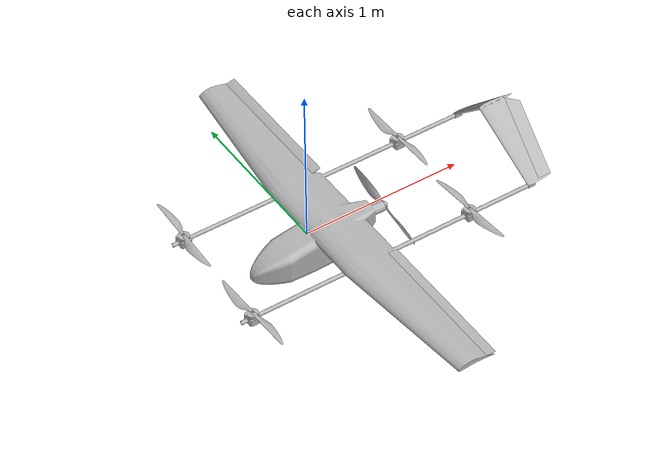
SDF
<sdf version='1.6'>
  <model name='gauthali_vtol_6'>
    <link name='body'>
      <pose frame=''>0 0 0 0 -0 0</pose>
      <inertial>
        <pose frame=''>0.118555 -8e-06 -0.056793 0 -0 0</pose>
        <mass>9.29767</mass>
        <inertia>
          <ixx>0.343777</ixx>
          <ixy>5.07423e-06</ixy>
          <ixz>-0.0937618</ixz>
          <iyy>0.630894</iyy>
          <iyz>8.98863e-07</iyz>
          <izz>0.888298</izz>
        </inertia>
      </inertial>
      <collision name='body_collision'>
        <pose frame=''>0 0 0 0 -0 0</pose>
        <geometry>
          <mesh>
            <scale>1 1 1</scale>
            <uri>model://gauthali_vtol_6/meshes/body.STL</uri>
          </mesh>
        </geometry>
      </collision>
      <collision name='body_fixed_joint_lump__tail_collision_1'>
        <pose frame=''>1.16 0 0.34355 2.3562 -0 0</pose>
        <geometry>
          <mesh>
            <scale>1 1 1</scale>
            <uri>model://gauthali_vtol_6/meshes/tail.STL</uri>
          </mesh>
        </geometry>
      </collision>
      <visual name='body_visual'>
        <pose frame=''>0 0 0 0 -0 0</pose>
        <geometry>
          <mesh>
            <scale>1 1 1</scale>
            <uri>model://gauthali_vtol_6/meshes/body.STL</uri>
          </mesh>
        </geometry>
      </visual>
      <visual name='body_fixed_joint_lump__tail_visual_1'>
        <pose frame=''>1.16 0 0.34355 2.3562 -0 0</pose>
        <geometry>
          <mesh>
            <scale>1 1 1</scale>
            <uri>model://gauthali_vtol_6/meshes/tail.STL</uri>
          </mesh>
        </geometry>
      </visual>
    </link>
    <link name='left_aileron'>
      <pose frame=''>0.28599 -0.38 0.006356 1.5708 -0.29369 0</pose>
      <inertial>
        <pose frame=''>0.017378 -0.008312 0.45424 0 -0 0</pose>
        <mass>0.0090385</mass>
        <inertia>
          <ixx>0.00063296</ixx>
          <ixy>3.822e-07</ixy>
          <ixz>-1.7169e-07</ixz>
          <iyy>0.00063438</iyy>
          <iyz>4.2676e-07</iyz>
          <izz>1.7477e-06</izz>
        </inertia>
      </inertial>
      <collision name='left_aileron_collision'>
        <pose frame=''>0 0 0 0 -0 0</pose>
        <geometry>
          <mesh>
            <scale>1 1 1</scale>
            <uri>model://gauthali_vtol_6/meshes/left_aileron.STL</uri>
          </mesh>
        </geometry>
      </collision>
      <visual name='left_aileron_visual'>
        <pose frame=''>0 0 0 0 -0 0</pose>
        <geometry>
          <mesh>
            <scale>1 1 1</scale>
            <uri>model://gauthali_vtol_6/meshes/left_aileron.STL</uri>
          </mesh>
        </geometry>
      </visual>
    </link>
    <joint name='left_aileron_joint' type='revolute'>
      <child>left_aileron</child>
      <parent>body</parent>
      <axis>
        <xyz>1e-06 -1 -4e-06</xyz>
        <limit>
          <lower>-0.53</lower>
          <upper>0.53</upper>
          <effort>-1</effort>
          <velocity>-1</velocity>
        </limit>
        <dynamics>
          <spring_reference>0</spring_reference>
          <spring_stiffness>0</spring_stiffness>
        </dynamics>
        <use_parent_model_frame>1</use_parent_model_frame>
      </axis>
    </joint>
    <link name='right_aileron'>
      <pose frame=''>0.28599 0.38 0.006356 1.5708 -0.59602 0</pose>
      <inertial>
        <pose frame=''>0.017379 -0.008312 -0.454239 0 -0 0</pose>
        <mass>0.00903851</mass>
        <inertia>
          <ixx>0.000632961</ixx>
          <ixy>3.82202e-07</ixy>
          <ixz>1.71598e-07</ixz>
          <iyy>0.000634387</iyy>
          <iyz>-4.26746e-07</iyz>
          <izz>1.74769e-06</izz>
        </inertia>
      </inertial>
      <collision name='right_aileron_collision'>
        <pose frame=''>0 0 0 0 -0 0</pose>
        <geometry>
          <mesh>
            <scale>1 1 1</scale>
            <uri>model://gauthali_vtol_6/meshes/right_aileron.STL</uri>
          </mesh>
        </geometry>
      </collision>
      <visual name='right_aileron_visual'>
        <pose frame=''>0 0 0 0 -0 0</pose>
        <geometry>
          <mesh>
            <scale>1 1 1</scale>
            <uri>model://gauthali_vtol_6/meshes/right_aileron.STL</uri>
          </mesh>
        </geometry>
      </visual>
    </link>
    <joint name='right_aileron_joint' type='revolute'>
      <child>right_aileron</child>
      <parent>body</parent>
      <axis>
        <xyz>2e-06 -1 -3e-06</xyz>
        <limit>
          <lower>-0.53</lower>
          <upper>0.53</upper>
          <effort>1</effort>
          <velocity>1</velocity>
        </limit>
        <dynamics>
          <spring_reference>0</spring_reference>
          <spring_stiffness>0</spring_stiffness>
        </dynamics>
        <use_parent_model_frame>1</use_parent_model_frame>
      </axis>
    </joint>
    <link name='rotor_0'>
      <pose frame=''>0.851 -0.35355 0.004413 1.5708 0 0.070839</pose>
      <inertial>
        <pose frame=''>0 0.015147 -0 0 -0 0</pose>
        <mass>0.067297</mass>
        <inertia>
          <ixx>0.0014426</ixx>
          <ixy>-5.9425e-13</ixy>
          <ixz>6.2333e-05</ixz>
          <iyy>0.0014525</iyy>
          <iyz>5.3654e-13</iyz>
          <izz>1.1315e-05</izz>
        </inertia>
      </inertial>
      <collision name='rotor_0_collision'>
        <pose frame=''>0 0 0 0 -0 0</pose>
        <geometry>
          <mesh>
            <scale>1 1 1</scale>
            <uri>model://gauthali_vtol_6/meshes/rotor_0.STL</uri>
          </mesh>
        </geometry>
      </collision>
      <visual name='rotor_0_visual'>
        <pose frame=''>0 0 0 0 -0 0</pose>
        <geometry>
          <mesh>
            <scale>1 1 1</scale>
            <uri>model://gauthali_vtol_6/meshes/rotor_0.STL</uri>
          </mesh>
        </geometry>
      </visual>
    </link>
    <joint name='rotor_0_joint' type='revolute'>
      <child>rotor_0</child>
      <parent>body</parent>
      <axis>
        <xyz>0 -4e-06 1</xyz>
        <limit>
          <lower>-1e+16</lower>
          <upper>1e+16</upper>
        </limit>
        <dynamics>
          <spring_reference>0</spring_reference>
          <spring_stiffness>0</spring_stiffness>
        </dynamics>
        <use_parent_model_frame>1</use_parent_model_frame>
      </axis>
    </joint>
    <link name='rotor_1'>
      <pose frame=''>-0.579 -0.35355 0.004413 1.5708 0 0.037212</pose>
      <inertial>
        <pose frame=''>0 0.015147 0 0 -0 0</pose>
        <mass>0.067298</mass>
        <inertia>
          <ixx>0.0014426</ixx>
          <ixy>2.974e-13</ixy>
          <ixz>-6.2331e-05</ixz>
          <iyy>0.0014526</iyy>
          <iyz>3.6549e-13</iyz>
          <izz>1.1315e-05</izz>
        </inertia>
      </inertial>
      <collision name='rotor_1_collision'>
        <pose frame=''>0 0 0 0 -0 0</pose>
        <geometry>
          <mesh>
            <scale>1 1 1</scale>
            <uri>model://gauthali_vtol_6/meshes/rotor_1.STL</uri>
          </mesh>
        </geometry>
      </collision>
      <visual name='rotor_1_visual'>
        <pose frame=''>0 0 0 0 -0 0</pose>
        <geometry>
          <mesh>
            <scale>1 1 1</scale>
            <uri>model://gauthali_vtol_6/meshes/rotor_1.STL</uri>
          </mesh>
        </geometry>
      </visual>
    </link>
    <joint name='rotor_1_joint' type='revolute'>
      <child>rotor_1</child>
      <parent>body</parent>
      <axis>
        <xyz>0 -4e-06 1</xyz>
        <limit>
          <lower>-1e+16</lower>
          <upper>1e+16</upper>
        </limit>
        <dynamics>
          <spring_reference>0</spring_reference>
          <spring_stiffness>0</spring_stiffness>
        </dynamics>
        <use_parent_model_frame>1</use_parent_model_frame>
      </axis>
    </joint>
    <link name='rotor_2'>
      <pose frame=''>-0.579 0.35355 0.004413 1.5708 -0 3.1093</pose>
      <inertial>
        <pose frame=''>0 0.015147 0 0 -0 0</pose>
        <mass>0.067297</mass>
        <inertia>
          <ixx>0.0014426</ixx>
          <ixy>-3.2966e-13</ixy>
          <ixz>6.2334e-05</ixz>
          <iyy>0.0014525</iyy>
          <iyz>-1.5022e-11</iyz>
          <izz>1.1315e-05</izz>
        </inertia>
      </inertial>
      <collision name='rotor_2_collision'>
        <pose frame=''>0 0 0 0 -0 0</pose>
        <geometry>
          <mesh>
            <scale>1 1 1</scale>
            <uri>model://gauthali_vtol_6/meshes/rotor_2.STL</uri>
          </mesh>
        </geometry>
      </collision>
      <visual name='rotor_2_visual'>
        <pose frame=''>0 0 0 0 -0 0</pose>
        <geometry>
          <mesh>
            <scale>1 1 1</scale>
            <uri>model://gauthali_vtol_6/meshes/rotor_2.STL</uri>
          </mesh>
        </geometry>
      </visual>
    </link>
    <joint name='rotor_2_joint' type='revolute'>
      <child>rotor_2</child>
      <parent>body</parent>
      <axis>
        <xyz>0 4e-06 1</xyz>
        <limit>
          <lower>-1e+16</lower>
          <upper>1e+16</upper>
        </limit>
        <dynamics>
          <spring_reference>0</spring_reference>
          <spring_stiffness>0</spring_stiffness>
        </dynamics>
        <use_parent_model_frame>1</use_parent_model_frame>
      </axis>
    </joint>
    <link name='rotor_3'>
      <pose frame=''>0.851 0.35355 0.004413 1.5708 -0 -3.1164</pose>
      <inertial>
        <pose frame=''>0 0.015147 0 0 -0 0</pose>
        <mass>0.067298</mass>
        <inertia>
          <ixx>0.0014426</ixx>
          <ixy>3.0201e-13</ixy>
          <ixz>-6.2331e-05</ixz>
          <iyy>0.0014526</iyy>
          <iyz>3.9742e-13</iyz>
          <izz>1.1315e-05</izz>
        </inertia>
      </inertial>
      <collision name='rotor_3_collision'>
        <pose frame=''>0 0 0 0 -0 0</pose>
        <geometry>
          <mesh>
            <scale>1 1 1</scale>
            <uri>model://gauthali_vtol_6/meshes/rotor_3.STL</uri>
          </mesh>
        </geometry>
      </collision>
      <visual name='rotor_3_visual'>
        <pose frame=''>0 0 0 0 -0 0</pose>
        <geometry>
          <mesh>
            <scale>1 1 1</scale>
            <uri>model://gauthali_vtol_6/meshes/rotor_3.STL</uri>
          </mesh>
        </geometry>
      </visual>
    </link>
    <joint name='rotor_3_joint' type='revolute'>
      <child>rotor_3</child>
      <parent>body</parent>
      <axis>
        <xyz>-0 4e-06 1</xyz>
        <limit>
          <lower>-1e+16</lower>
          <upper>1e+16</upper>
        </limit>
        <dynamics>
          <spring_reference>0</spring_reference>
          <spring_stiffness>0</spring_stiffness>
        </dynamics>
        <use_parent_model_frame>1</use_parent_model_frame>
      </axis>
    </joint>
    <link name='rotor_pusher'>
      <pose frame=''>0.50018 0 -0.058605 3.14159 1.5013 -1.5708</pose>
      <inertial>
        <pose frame=''>-0 -0.0128 -0 0 -0 0</pose>
        <mass>0.18697</mass>
        <inertia>
          <ixx>0.0042869</ixx>
          <ixy>-2.3802e-11</ixy>
          <ixz>0.00097039</ixz>
          <iyy>0.0045336</iyy>
          <iyz>-4.8967e-11</iyz>
          <izz>0.00025725</izz>
        </inertia>
      </inertial>
      <collision name='rotor_pusher_collision'>
        <pose frame=''>0 0 0 0 -0 0</pose>
        <geometry>
          <mesh>
            <scale>1 1 1</scale>
            <uri>model://gauthali_vtol_6/meshes/rotor_pusher.STL</uri>
          </mesh>
        </geometry>
      </collision>
      <visual name='rotor_pusher_visual'>
        <pose frame=''>0 0 0 0 -0 0</pose>
        <geometry>
          <mesh>
            <scale>1 1 1</scale>
            <uri>model://gauthali_vtol_6/meshes/rotor_pusher.STL</uri>
          </mesh>
        </geometry>
      </visual>
    </link>
    <joint name='rotor_pusher_joint' type='revolute'>
      <child>rotor_pusher</child>
      <parent>body</parent>
      <axis>
        <xyz>-1 -4e-06 1e-06</xyz>
        <limit>
          <lower>-1e+16</lower>
          <upper>1e+16</upper>
        </limit>
        <dynamics>
          <spring_reference>0</spring_reference>
          <spring_stiffness>0</spring_stiffness>
        </dynamics>
        <use_parent_model_frame>1</use_parent_model_frame>
      </axis>
    </joint>
    <link name='left_ruddevator'>
      <pose frame=''>1.32775 -0.005058 0.348608 2.3562 -0 0</pose>
      <inertial>
        <pose frame=''>0.029088 -0.007151 0.25282 0 -0 0</pose>
        <mass>0.011825</mass>
        <inertia>
          <ixx>0.0002244</ixx>
          <ixy>3.7585e-10</ixy>
          <ixz>-1.8506e-06</ixz>
          <iyy>0.00022971</iyy>
          <iyz>-5.9334e-09</iyz>
          <izz>5.7467e-06</izz>
        </inertia>
      </inertial>
      <collision name='left_ruddevator_collision'>
        <pose frame=''>0 0 0 0 -0 0</pose>
        <geometry>
          <mesh>
            <scale>1 1 1</scale>
            <uri>model://gauthali_vtol_6/meshes/left_ruddevator.STL</uri>
          </mesh>
        </geometry>
      </collision>
      <visual name='left_ruddevator_visual'>
        <pose frame=''>0 0 0 0 -0 0</pose>
        <geometry>
          <mesh>
            <scale>1 1 1</scale>
            <uri>model://gauthali_vtol_6/meshes/left_ruddevator.STL</uri>
          </mesh>
        </geometry>
      </visual>
    </link>
    <joint name='left_ruddevator_joint' type='revolute'>
      <child>left_ruddevator</child>
      <parent>body</parent>
      <axis>
        <xyz>0 -0.707103 -0.707111</xyz>
        <limit>
          <lower>-0.53</lower>
          <upper>0.53</upper>
          <effort>-1</effort>
          <velocity>-1</velocity>
        </limit>
        <dynamics>
          <spring_reference>0</spring_reference>
          <spring_stiffness>0</spring_stiffness>
        </dynamics>
        <use_parent_model_frame>1</use_parent_model_frame>
      </axis>
    </joint>
    <link name='right_ruddevator'>
      <pose frame=''>1.32775 0.005058 0.348608 2.3562 -0 0</pose>
      <inertial>
        <pose frame=''>0.029088 -0.25282 0.007151 0 -0 0</pose>
        <mass>0.011825</mass>
        <inertia>
          <ixx>0.00022439</ixx>
          <ixy>1.8506e-06</ixy>
          <ixz>-3.6772e-10</ixz>
          <iyy>5.7467e-06</iyy>
          <iyz>-5.9487e-09</iyz>
          <izz>0.00022971</izz>
        </inertia>
      </inertial>
      <collision name='right_ruddevator_collision'>
        <pose frame=''>0 0 0 0 -0 0</pose>
        <geometry>
          <mesh>
            <scale>1 1 1</scale>
            <uri>model://gauthali_vtol_6/meshes/right_ruddevator.STL</uri>
          </mesh>
        </geometry>
      </collision>
      <visual name='right_ruddevator_visual'>
        <pose frame=''>0 0 0 0 -0 0</pose>
        <geometry>
          <mesh>
            <scale>1 1 1</scale>
            <uri>model://gauthali_vtol_6/meshes/right_ruddevator.STL</uri>
          </mesh>
        </geometry>
      </visual>
    </link>
    <joint name='right_ruddevator_joint' type='revolute'>
      <child>right_ruddevator</child>
      <parent>body</parent>
      <axis>
        <xyz>0 -0.707111 0.707103</xyz>
        <limit>
          <lower>-1e+16</lower>
          <upper>1e+16</upper>
        </limit>
        <dynamics>
          <spring_reference>0</spring_reference>
          <spring_stiffness>0</spring_stiffness>
        </dynamics>
        <use_parent_model_frame>1</use_parent_model_frame>
      </axis>
    </joint>
    <plugin name="left_wing" filename="libLiftDragPlugin.so">
      <a0>0.156575426451136</a0>
      <cla>5.15662015617741</cla>
      <cda>0.401070456591576</cda>
      <cma>-1.2</cma>
      <alpha_stall>0.357288290430484</alpha_stall>
      <cla_stall>-3.85</cla_stall>
      <cda_stall>-0.9233984055</cda_stall>
      <cma_stall>0</cma_stall>
      <cp>0.166 -0.55 0</cp>
      <area>0.395</area>
      <air_density>1.2041</air_density>
      <forward>-1 0 0</forward>
      <upward>0 0 1</upward>
      <link_name>body</link_name>
      <control_joint_name>
        left_aileron_joint
      </control_joint_name>
      <control_joint_rad_to_cl>-0.5</control_joint_rad_to_cl>
    </plugin>
<plugin name="right_wing" filename="libLiftDragPlugin.so">
      <a0>0.156575426451136</a0>
      <cla>5.15662015617741</cla>
      <cda>0.401070456591576</cda>
      <cma>-1.2</cma>
      <alpha_stall>0.357288290430484</alpha_stall>
      <cla_stall>-3.85</cla_stall>
      <cda_stall>-0.9233984055</cda_stall>
      <cma_stall>0</cma_stall>
      <cp>0.166 0.55 0</cp>
      <area>0.395</area>
      <air_density>1.2041</air_density>
      <forward>-1 0 0</forward>
      <upward>0 0 1</upward>
      <link_name>body</link_name>
      <control_joint_name>
        right_aileron_joint
      </control_joint_name>
      <control_joint_rad_to_cl>-0.5</control_joint_rad_to_cl>
    </plugin>
<plugin name="left_tail" filename="libLiftDragPlugin.so">
      <a0>0</a0>
      <cla>3.10543124960906</cla>
      <cda>0.269290163711487</cda>
      <cma>-1.2</cma>
      <alpha_stall>0.349065850398866</alpha_stall>
      <cla_stall>-3.85</cla_stall>
      <cda_stall>-0.9233984055</cda_stall>
      <cma_stall>0</cma_stall>
      <cp>1.25 -0.1414 0.2021</cp>
      <area>0.075</area>
      <air_density>1.2041</air_density>
      <forward>-1 0 0</forward>
      <upward>0 -0.707 0.707</upward>
      <link_name>body</link_name>
      <control_joint_name>
        left_ruddevator_joint
      </control_joint_name>
      <control_joint_rad_to_cl>-4.0</control_joint_rad_to_cl>
    </plugin>
<plugin name="right_tail" filename="libLiftDragPlugin.so">
      <a0>0</a0>
      <cla>3.10543124960906</cla>
      <cda>0.269290163711487</cda>
      <cma>-1.2</cma>
      <alpha_stall>0.349065850398866</alpha_stall>
      <cla_stall>-3.85</cla_stall>
      <cda_stall>-0.9233984055</cda_stall>
      <cma_stall>0</cma_stall>
      <cp>1.25 0.1414 0.2021</cp>
      <area>0.075</area>
      <air_density>1.2041</air_density>
      <forward>-1 0 0</forward>
      <upward>0 -0.707 0.707</upward>
      <link_name>body</link_name>
      <control_joint_name>
        right_ruddevator_joint
      </control_joint_name>
      <control_joint_rad_to_cl>-4.0</control_joint_rad_to_cl>
    </plugin>
<plugin name="pusher_blade_1" filename="libLiftDragPlugin.so">
      <a0>0.30</a0>
      <alpha_stall>1.4</alpha_stall>
      <cla>4.2500</cla>
      <cda>0.10</cda>
      <cma>0.00</cma>
      <cla_stall>-0.025</cla_stall>
      <cda_stall>0.0</cda_stall>
      <cma_stall>0.0</cma_stall>
      <area>0.01</area>
      <air_density>1.2041</air_density>
      <cp>0 0 -0.093</cp>
      <forward>-1 0 0</forward>
      <upward>0 1 0</upward>
      <link_name>rotor_pusher</link_name>
    </plugin>
<plugin name="pusher_blade_2" filename="libLiftDragPlugin.so">
      <a0>0.30</a0>
      <alpha_stall>1.4</alpha_stall>
      <cla>4.2500</cla>
      <cda>0.10</cda>
      <cma>0.00</cma>
      <cla_stall>-0.025</cla_stall>
      <cda_stall>0.0</cda_stall>
      <cma_stall>0.0</cma_stall>
      <area>0.01</area>
      <air_density>1.2041</air_density>
      <cp>0 0 0.093</cp>
      <forward>1 0 0</forward>
      <upward>0 1 0</upward>
      <link_name>rotor_pusher</link_name>
    </plugin>
<plugin name="rotor_0_blade_1" filename="libLiftDragPlugin.so">
      <a0>0.3</a0>
      <alpha_stall>1.4</alpha_stall>
      <cla>4.2500</cla>
      <cda>0.10</cda>
      <cma>0.00</cma>
      <cla_stall>-0.025</cla_stall>
      <cda_stall>0.0</cda_stall>
      <cma_stall>0.0</cma_stall>
      <area>0.01</area>
      <air_density>1.2041</air_density>
      <cp>0 0 0.093</cp>
      <forward>1 0 0</forward>
      <upward>0 1 0</upward>
      <link_name>rotor_0</link_name>
    </plugin>
<plugin name="rotor_0_blade_2" filename="libLiftDragPlugin.so">
      <a0>0.3</a0>
      <alpha_stall>1.4</alpha_stall>
      <cla>4.2500</cla>
      <cda>0.10</cda>
      <cma>0.00</cma>
      <cla_stall>-0.025</cla_stall>
      <cda_stall>0.0</cda_stall>
      <cma_stall>0.0</cma_stall>
      <area>0.01</area>
      <air_density>1.2041</air_density>
      <cp>0 0 -0.093</cp>
      <forward>-1 0 0</forward>
      <upward>0 1 0</upward>
      <link_name>rotor_0</link_name>
    </plugin>
<plugin name="rotor_1_blade_1" filename="libLiftDragPlugin.so">
      <a0>0.3</a0>
      <alpha_stall>1.4</alpha_stall>
      <cla>4.2500</cla>
      <cda>0.10</cda>
      <cma>0.00</cma>
      <cla_stall>-0.025</cla_stall>
      <cda_stall>0.0</cda_stall>
      <cma_stall>0.0</cma_stall>
      <area>0.01</area>
      <air_density>1.2041</air_density>
      <cp>0 0 0.093</cp> <!-- check sign -->
      <forward>-1 0 0</forward>
      <upward>0 1 0</upward>
      <link_name>rotor_1</link_name>
    </plugin>
<plugin name="rotor_1_blade_2" filename="libLiftDragPlugin.so">
      <a0>0.3</a0>
      <alpha_stall>1.4</alpha_stall>
      <cla>4.2500</cla>
      <cda>0.10</cda>
      <cma>0.00</cma>
      <cla_stall>-0.025</cla_stall>
      <cda_stall>0.0</cda_stall>
      <cma_stall>0.0</cma_stall>
      <area>0.01</area>
      <air_density>1.2041</air_density>
      <cp>0 0 -0.093</cp> <!-- check sign -->
      <forward>1 0 0</forward>
      <upward>0 1 0</upward>
      <link_name>rotor_1</link_name>
    </plugin>
<plugin name="rotor_2_blade_1" filename="libLiftDragPlugin.so">
      <a0>0.3</a0>
      <alpha_stall>1.4</alpha_stall>
      <cla>4.2500</cla>
      <cda>0.10</cda>
      <cma>0.00</cma>
      <cla_stall>-0.025</cla_stall>
      <cda_stall>0.0</cda_stall>
      <cma_stall>0.0</cma_stall>
      <area>0.01</area>
      <air_density>1.2041</air_density>
      <cp>0 0 -0.093</cp>
      <forward>-1 0 0</forward>
      <upward>0 1 0</upward>
      <link_name>rotor_2</link_name>
    </plugin>
<plugin name="rotor_2_blade_2" filename="libLiftDragPlugin.so">
      <a0>0.3</a0>
      <alpha_stall>1.4</alpha_stall>
      <cla>4.2500</cla>
      <cda>0.10</cda>
      <cma>0.00</cma>
      <cla_stall>-0.025</cla_stall>
      <cda_stall>0.0</cda_stall>
      <cma_stall>0.0</cma_stall>
      <area>0.01</area>
      <air_density>1.2041</air_density>
      <cp>0 0 0.093</cp>
      <forward>1 0 0</forward>
      <upward>0 1 0</upward>
      <link_name>rotor_2</link_name>
    </plugin>
<plugin name="rotor_3_blade_1" filename="libLiftDragPlugin.so">
      <a0>0.3</a0>
      <alpha_stall>1.4</alpha_stall>
      <cla>4.2500</cla>
      <cda>0.10</cda>
      <cma>0.00</cma>
      <cla_stall>-0.025</cla_stall>
      <cda_stall>0.0</cda_stall>
      <cma_stall>0.0</cma_stall>
      <area>0.01</area>
      <air_density>1.2041</air_density>
      <cp>0 0 -0.093</cp>
      <forward>1 0 0</forward>
      <upward>0 1 0</upward>
      <link_name>rotor_3</link_name>
    </plugin>
<plugin name="rotor_3_blade_2" filename="libLiftDragPlugin.so">
      <a0>0.3</a0>
      <alpha_stall>1.4</alpha_stall>
      <cla>4.2500</cla>
      <cda>0.10</cda>
      <cma>0.00</cma>
      <cla_stall>-0.025</cla_stall>
      <cda_stall>0.0</cda_stall>
      <cma_stall>0.0</cma_stall>
      <area>0.01</area>
      <air_density>1.2041</air_density>
      <cp>0 0 0.093</cp>
      <forward>-1 0 0</forward>
      <upward>0 1 0</upward>
      <link_name>rotor_3</link_name>
    </plugin>
  </model>
</sdf>
